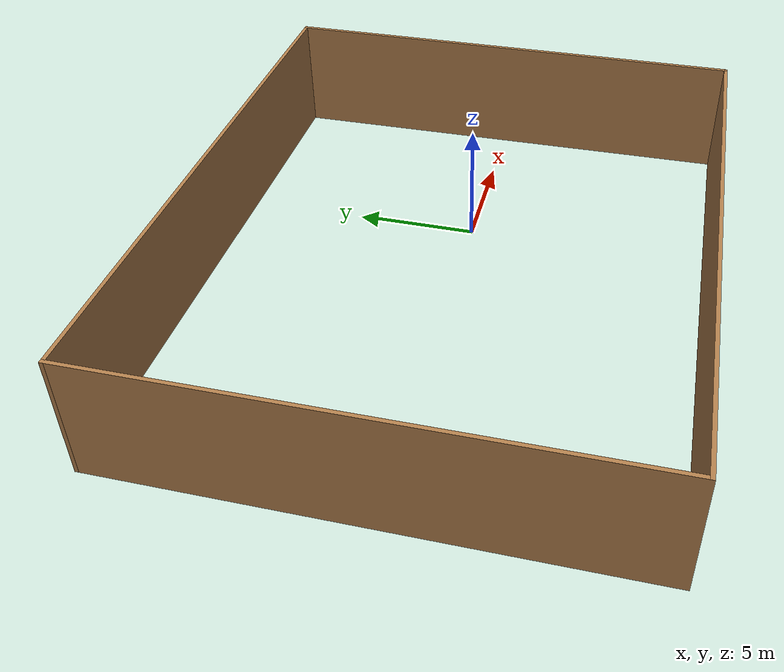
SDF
<?xml version='1.0'?>
<sdf version='1.7'>
  <model name='new_frarm'>
    <pose>-4 0 0 0 -0 0</pose>
    <link name='Wall_0'>
      <collision name='Wall_0_Collision'>
        <geometry>
          <box>
            <size>20.15 0.15 5</size>
          </box>
        </geometry>
        <pose>0 0 2.5 0 -0 0</pose>
      </collision>
      <visual name='Wall_0_Visual'>
        <pose>0 0 2.5 0 -0 0</pose>
        <geometry>
          <box>
            <size>20.15 0.15 5</size>
          </box>
        </geometry>
        <material>
          <script>
            <uri>file://media/materials/scripts/gazebo.material</uri>
            <name>Gazebo/Wood</name>
          </script>
          <ambient>1 1 1 1</ambient>
        </material>
        <meta>
          <layer>0</layer>
        </meta>
      </visual>
      <pose>12 0 0 0 -0 -1.5708</pose>
    </link>
    <link name='Wall_2'>
      <collision name='Wall_2_Collision'>
        <geometry>
          <box>
            <size>24.15 0.15 5</size>
          </box>
        </geometry>
        <pose>0 0 2.5 0 -0 0</pose>
      </collision>
      <visual name='Wall_2_Visual'>
        <pose>0 0 2.5 0 -0 0</pose>
        <geometry>
          <box>
            <size>24.15 0.15 5</size>
          </box>
        </geometry>
        <material>
          <script>
            <uri>file://media/materials/scripts/gazebo.material</uri>
            <name>Gazebo/Wood</name>
          </script>
          <ambient>1 1 1 1</ambient>
        </material>
        <meta>
          <layer>0</layer>
        </meta>
      </visual>
      <pose>0 -10 0 0 -0 3.14159</pose>
    </link>
    <link name='Wall_5'>
      <collision name='Wall_5_Collision'>
        <geometry>
          <box>
            <size>20.15 0.15 5</size>
          </box>
        </geometry>
        <pose>0 0 2.5 0 -0 0</pose>
      </collision>
      <visual name='Wall_5_Visual'>
        <pose>0 0 2.5 0 -0 0</pose>
        <geometry>
          <box>
            <size>20.15 0.15 5</size>
          </box>
        </geometry>
        <material>
          <script>
            <uri>file://media/materials/scripts/gazebo.material</uri>
            <name>Gazebo/Wood</name>
          </script>
          <ambient>1 1 1 1</ambient>
        </material>
        <meta>
          <layer>0</layer>
        </meta>
      </visual>
      <pose>-12 0 0 0 -0 -1.5708</pose>
    </link>
    <link name='Wall_7'>
      <collision name='Wall_7_Collision'>
        <geometry>
          <box>
            <size>24.15 0.15 5</size>
          </box>
        </geometry>
        <pose>0 0 2.5 0 -0 0</pose>
      </collision>
      <visual name='Wall_7_Visual'>
        <pose>0 0 2.5 0 -0 0</pose>
        <geometry>
          <box>
            <size>24.15 0.15 5</size>
          </box>
        </geometry>
        <material>
          <script>
            <uri>file://media/materials/scripts/gazebo.material</uri>
            <name>Gazebo/Wood</name>
          </script>
          <ambient>1 1 1 1</ambient>
        </material>
        <meta>
          <layer>0</layer>
        </meta>
      </visual>
      <pose>0 10 0 0 -0 0</pose>
    </link>
    <static>1</static>
  </model>
</sdf>
